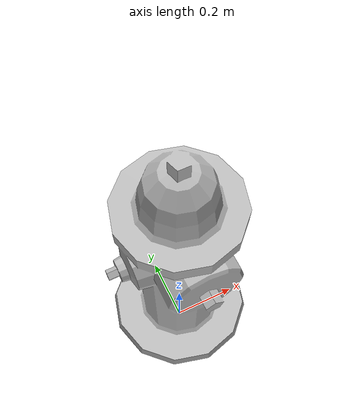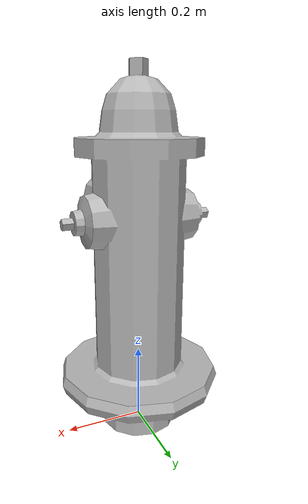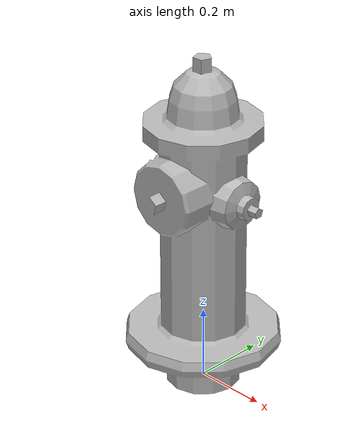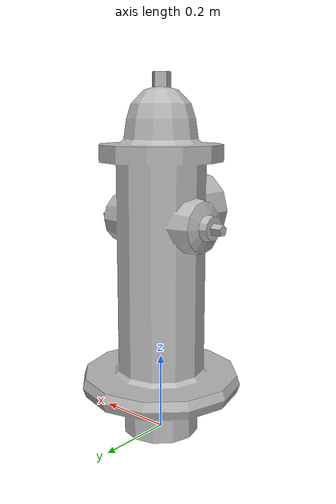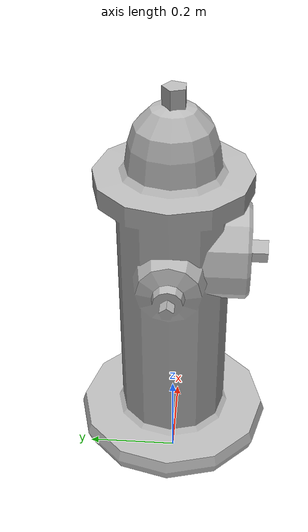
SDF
<?xml version="1.0" ?>
<sdf version="1.5">
    <model name="fire_hydrant">
        <static>true</static>
        <link name="link">
            <collision name="collision">
                <geometry>
                    <mesh>
                        <uri>model://fire_hydrant/meshes/fire_hydrant.dae</uri>
                    </mesh>
                </geometry>
            </collision>
            <visual name="visual">
                <geometry>
                    <mesh>
                        <uri>model://fire_hydrant/meshes/fire_hydrant.dae</uri>
                    </mesh>
                </geometry>
            </visual>
        </link>
    </model>
</sdf>
